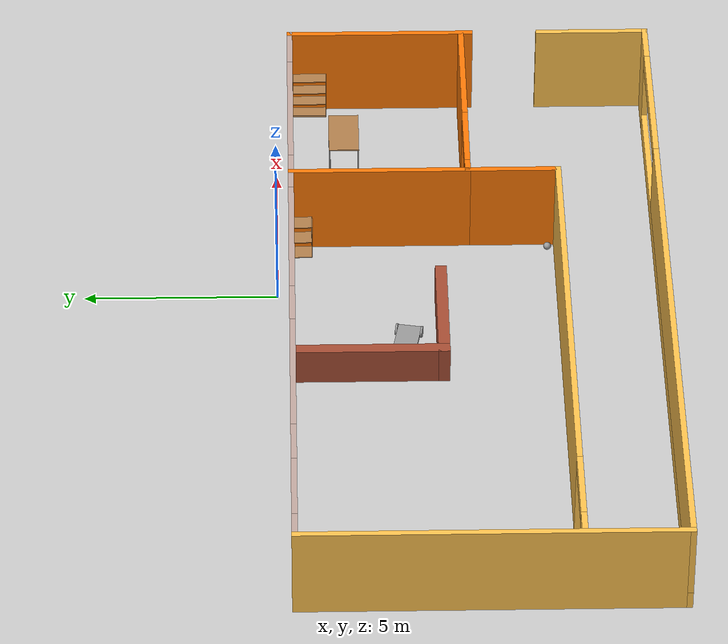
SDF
<sdf version="1.6">
 <world name="default">
  <model name="ground_plane">
   <static>1</static>
   <link name="link">
    <collision name="collision">
     <geometry><plane><normal>0 0 1</normal><size>100 100</size></plane></geometry>
     <surface>
      <contact><collide_bitmask>65535</collide_bitmask></contact>
      <friction><ode><mu>100</mu><mu2>50</mu2></ode></friction>
     </surface>
    </collision>
    <visual name="visual">
     <cast_shadows>0</cast_shadows>
     <geometry><plane><normal>0 0 1</normal><size>100 100</size></plane></geometry>
     <material>
      <script><uri>file://media/materials/scripts/gazebo.material</uri><name>Gazebo/Grey</name></script>
     </material>
    </visual>
   </link>
  </model>
  <model name="building_proj">
   <pose>-1.89195 -5.00108 0 0 -0 0</pose>
   <link name="Wall_20">
    <pose>-0 4.62544 0 0 -0 0</pose>
    <visual name="Wall_20_Visual_0">
     <pose>-9.60321 0 1.25 0 -0 0</pose>
     <geometry><box><size>0.793589 0.15 2.5</size></box></geometry>
     <material>
      <script><uri>file://media/materials/scripts/gazebo.material</uri><name>Gazebo/Grey</name></script>
      <ambient>0.760784 0.662745 0.627451 1</ambient>
     </material>
     <meta><layer>0</layer></meta>
    </visual>
    <collision name="Wall_20_Collision_0">
     <geometry><box><size>0.793589 0.15 2.5</size></box></geometry>
     <pose>-9.60321 0 1.25 0 -0 0</pose>
    </collision>
    <visual name="Wall_20_Visual_1">
     <pose>-6.57719 0 1.25 0 -0 0</pose>
     <geometry><box><size>1.25845 0.15 2.5</size></box></geometry>
     <material>
      <script><uri>file://media/materials/scripts/gazebo.material</uri><name>Gazebo/Grey</name></script>
      <ambient>0.760784 0.662745 0.627451 1</ambient>
     </material>
     <meta><layer>0</layer></meta>
    </visual>
    <collision name="Wall_20_Collision_1">
     <geometry><box><size>1.25845 0.15 2.5</size></box></geometry>
     <pose>-6.57719 0 1.25 0 -0 0</pose>
    </collision>
    <visual name="Wall_20_Visual_2">
     <pose>2.02602 0 0.25 0 -0 0</pose>
     <geometry><box><size>15.948 0.15 0.5</size></box></geometry>
     <material>
      <script><uri>file://media/materials/scripts/gazebo.material</uri><name>Gazebo/Grey</name></script>
      <ambient>0.760784 0.662745 0.627451 1</ambient>
     </material>
     <meta><layer>0</layer></meta>
    </visual>
    <collision name="Wall_20_Collision_2">
     <geometry><box><size>15.948 0.15 0.5</size></box></geometry>
     <pose>2.02602 0 0.25 0 -0 0</pose>
    </collision>
    <visual name="Wall_20_Visual_3">
     <pose>-1.30164 0 1.5 0 -0 0</pose>
     <geometry><box><size>1.29265 0.15 2</size></box></geometry>
     <material>
      <script><uri>file://media/materials/scripts/gazebo.material</uri><name>Gazebo/Grey</name></script>
      <ambient>0.760784 0.662745 0.627451 1</ambient>
     </material>
     <meta><layer>0</layer></meta>
    </visual>
    <collision name="Wall_20_Collision_3">
     <geometry><box><size>1.29265 0.15 2</size></box></geometry>
     <pose>-1.30164 0 1.5 0 -0 0</pose>
    </collision>
    <visual name="Wall_20_Visual_4">
     <pose>4.01382 0 1.5 0 -0 0</pose>
     <geometry><box><size>1.33827 0.15 2</size></box></geometry>
     <material>
      <script><uri>file://media/materials/scripts/gazebo.material</uri><name>Gazebo/Grey</name></script>
      <ambient>0.760784 0.662745 0.627451 1</ambient>
     </material>
     <meta><layer>0</layer></meta>
    </visual>
    <collision name="Wall_20_Collision_4">
     <geometry><box><size>1.33827 0.15 2</size></box></geometry>
     <pose>4.01382 0 1.5 0 -0 0</pose>
    </collision>
    <visual name="Wall_20_Visual_5">
     <pose>9.34148 0 1.5 0 -0 0</pose>
     <geometry><box><size>1.31705 0.15 2</size></box></geometry>
     <material>
      <script><uri>file://media/materials/scripts/gazebo.material</uri><name>Gazebo/Grey</name></script>
      <ambient>0.760784 0.662745 0.627451 1</ambient>
     </material>
     <meta><layer>0</layer></meta>
    </visual>
    <collision name="Wall_20_Collision_5">
     <geometry><box><size>1.31705 0.15 2</size></box></geometry>
     <pose>9.34148 0 1.5 0 -0 0</pose>
    </collision>
    <visual name="Wall_20_Visual_6">
     <pose>-8.20641 0 2.3 0 -0 0</pose>
     <geometry><box><size>2 0.15 0.4</size></box></geometry>
     <material>
      <script><uri>file://media/materials/scripts/gazebo.material</uri><name>Gazebo/Grey</name></script>
      <ambient>0.760784 0.662745 0.627451 1</ambient>
     </material>
     <meta><layer>0</layer></meta>
    </visual>
    <collision name="Wall_20_Collision_6">
     <geometry><box><size>2 0.15 0.4</size></box></geometry>
     <pose>-8.20641 0 2.3 0 -0 0</pose>
    </collision>
    <visual name="Wall_20_Visual_7">
     <pose>-3.94796 0 2.3 0 -0 0</pose>
     <geometry><box><size>4 0.15 0.4</size></box></geometry>
     <material>
      <script><uri>file://media/materials/scripts/gazebo.material</uri><name>Gazebo/Grey</name></script>
      <ambient>0.760784 0.662745 0.627451 1</ambient>
     </material>
     <meta><layer>0</layer></meta>
    </visual>
    <collision name="Wall_20_Collision_7">
     <geometry><box><size>4 0.15 0.4</size></box></geometry>
     <pose>-3.94796 0 2.3 0 -0 0</pose>
    </collision>
    <visual name="Wall_20_Visual_8">
     <pose>1.34468 0 2.3 0 -0 0</pose>
     <geometry><box><size>4 0.15 0.4</size></box></geometry>
     <material>
      <script><uri>file://media/materials/scripts/gazebo.material</uri><name>Gazebo/Grey</name></script>
      <ambient>0.760784 0.662745 0.627451 1</ambient>
     </material>
     <meta><layer>0</layer></meta>
    </visual>
    <collision name="Wall_20_Collision_8">
     <geometry><box><size>4 0.15 0.4</size></box></geometry>
     <pose>1.34468 0 2.3 0 -0 0</pose>
    </collision>
    <visual name="Wall_20_Visual_9">
     <pose>6.68295 0 2.3 0 -0 0</pose>
     <geometry><box><size>4 0.15 0.4</size></box></geometry>
     <material>
      <script><uri>file://media/materials/scripts/gazebo.material</uri><name>Gazebo/Grey</name></script>
      <ambient>0.760784 0.662745 0.627451 1</ambient>
     </material>
     <meta><layer>0</layer></meta>
    </visual>
    <collision name="Wall_20_Collision_9">
     <geometry><box><size>4 0.15 0.4</size></box></geometry>
     <pose>6.68295 0 2.3 0 -0 0</pose>
    </collision>
   </link>
   <link name="Wall_21">
    <collision name="Wall_21_Collision">
     <geometry><box><size>5 0.15 2.5</size></box></geometry>
     <pose>0 0 1.25 0 -0 0</pose>
    </collision>
    <visual name="Wall_21_Visual">
     <pose>0 0 1.25 0 -0 0</pose>
     <geometry><box><size>5 0.15 2.5</size></box></geometry>
     <material>
      <script><uri>file://media/materials/scripts/gazebo.material</uri><name>Gazebo/Grey</name></script>
      <ambient>0.996078 0.47451 0.0196078 1</ambient>
     </material>
     <meta><layer>0</layer></meta>
    </visual>
    <pose>9.925 2.20044 0 0 -0 -1.5708</pose>
   </link>
   <link name="Wall_23">
    <collision name="Wall_23_Collision">
     <geometry><box><size>3 0.15 2.5</size></box></geometry>
     <pose>0 0 1.25 0 -0 0</pose>
    </collision>
    <visual name="Wall_23_Visual">
     <pose>0 0 1.25 0 -0 0</pose>
     <geometry><box><size>3 0.15 2.5</size></box></geometry>
     <material>
      <script><uri>file://media/materials/scripts/gazebo.material</uri><name>Gazebo/Grey</name></script>
      <ambient>1 0.764706 0.305882 1</ambient>
     </material>
     <meta><layer>0</layer></meta>
    </visual>
    <pose>9.925 -3.49956 0 0 -0 -1.5708</pose>
   </link>
   <link name="Wall_24">
    <pose>-0 -4.92456 0 0 -0 3.14159</pose>
    <visual name="Wall_24_Visual_0">
     <pose>-9.39305 0 1.25 0 -0 0</pose>
     <geometry><box><size>1.21389 0.15 2.5</size></box></geometry>
     <material>
      <script><uri>file://media/materials/scripts/gazebo.material</uri><name>Gazebo/Grey</name></script>
      <ambient>1 0.764706 0.305882 1</ambient>
     </material>
     <meta><layer>0</layer></meta>
    </visual>
    <collision name="Wall_24_Collision_0">
     <geometry><box><size>1.21389 0.15 2.5</size></box></geometry>
     <pose>-9.39305 0 1.25 0 -0 0</pose>
    </collision>
    <visual name="Wall_24_Visual_1">
     <pose>0.606947 0 0.25 0 -0 0</pose>
     <geometry><box><size>18.7861 0.15 0.5</size></box></geometry>
     <material>
      <script><uri>file://media/materials/scripts/gazebo.material</uri><name>Gazebo/Grey</name></script>
      <ambient>1 0.764706 0.305882 1</ambient>
     </material>
     <meta><layer>0</layer></meta>
    </visual>
    <collision name="Wall_24_Collision_1">
     <geometry><box><size>18.7861 0.15 0.5</size></box></geometry>
     <pose>0.606947 0 0.25 0 -0 0</pose>
    </collision>
    <visual name="Wall_24_Visual_2">
     <pose>2.60695 0 1.5 0 -0 0</pose>
     <geometry><box><size>14.7861 0.15 2</size></box></geometry>
     <material>
      <script><uri>file://media/materials/scripts/gazebo.material</uri><name>Gazebo/Grey</name></script>
      <ambient>1 0.764706 0.305882 1</ambient>
     </material>
     <meta><layer>0</layer></meta>
    </visual>
    <collision name="Wall_24_Collision_2">
     <geometry><box><size>14.7861 0.15 2</size></box></geometry>
     <pose>2.60695 0 1.5 0 -0 0</pose>
    </collision>
    <visual name="Wall_24_Visual_3">
     <pose>-6.78611 0 2.3 0 -0 0</pose>
     <geometry><box><size>4 0.15 0.4</size></box></geometry>
     <material>
      <script><uri>file://media/materials/scripts/gazebo.material</uri><name>Gazebo/Grey</name></script>
      <ambient>1 0.764706 0.305882 1</ambient>
     </material>
     <meta><layer>0</layer></meta>
    </visual>
    <collision name="Wall_24_Collision_3">
     <geometry><box><size>4 0.15 0.4</size></box></geometry>
     <pose>-6.78611 0 2.3 0 -0 0</pose>
    </collision>
   </link>
   <link name="Wall_25">
    <collision name="Wall_25_Collision">
     <geometry><box><size>9.7 0.15 2.5</size></box></geometry>
     <pose>0 0 1.25 0 -0 0</pose>
    </collision>
    <visual name="Wall_25_Visual">
     <pose>0 0 1.25 0 -0 0</pose>
     <geometry><box><size>9.7 0.15 2.5</size></box></geometry>
     <material>
      <script><uri>file://media/materials/scripts/gazebo.material</uri><name>Gazebo/Grey</name></script>
      <ambient>1 0.764706 0.305882 1</ambient>
     </material>
     <meta><layer>0</layer></meta>
    </visual>
    <pose>-9.925 -0.149558 0 0 -0 1.5708</pose>
   </link>
   <link name="Wall_49">
    <collision name="Wall_49_Collision">
     <geometry><box><size>4.75 0.15 2.5</size></box></geometry>
     <pose>0 0 1.25 0 -0 0</pose>
    </collision>
    <visual name="Wall_49_Visual">
     <pose>0 0 1.25 0 -0 0</pose>
     <geometry><box><size>4.75 0.15 2.5</size></box></geometry>
     <material>
      <script><uri>file://media/materials/scripts/gazebo.material</uri><name>Gazebo/Grey</name></script>
      <ambient>0.996078 0.47451 0.0196078 1</ambient>
     </material>
     <meta><layer>0</layer></meta>
    </visual>
    <pose>4.01102 2.32197 0 0 -0 -1.5708</pose>
   </link>
   <link name="Wall_50">
    <pose>6.93602 0.021971 0 0 -0 0</pose>
    <visual name="Wall_50_Visual_0">
     <pose>-2.75702 0 1.25 0 -0 0</pose>
     <geometry><box><size>0.485967 0.15 2.5</size></box></geometry>
     <material>
      <script><uri>file://media/materials/scripts/gazebo.material</uri><name>Gazebo/Grey</name></script>
      <ambient>0.996078 0.47451 0.0196078 1</ambient>
     </material>
     <meta><layer>0</layer></meta>
    </visual>
    <collision name="Wall_50_Collision_0">
     <geometry><box><size>0.485967 0.15 2.5</size></box></geometry>
     <pose>-2.75702 0 1.25 0 -0 0</pose>
    </collision>
    <visual name="Wall_50_Visual_1">
     <pose>1.24298 0 1.25 0 -0 0</pose>
     <geometry><box><size>3.51403 0.15 2.5</size></box></geometry>
     <material>
      <script><uri>file://media/materials/scripts/gazebo.material</uri><name>Gazebo/Grey</name></script>
      <ambient>0.996078 0.47451 0.0196078 1</ambient>
     </material>
     <meta><layer>0</layer></meta>
    </visual>
    <collision name="Wall_50_Collision_1">
     <geometry><box><size>3.51403 0.15 2.5</size></box></geometry>
     <pose>1.24298 0 1.25 0 -0 0</pose>
    </collision>
    <visual name="Wall_50_Visual_2">
     <pose>-1.51403 0 2.3 0 -0 0</pose>
     <geometry><box><size>2 0.15 0.4</size></box></geometry>
     <material>
      <script><uri>file://media/materials/scripts/gazebo.material</uri><name>Gazebo/Grey</name></script>
      <ambient>0.996078 0.47451 0.0196078 1</ambient>
     </material>
     <meta><layer>0</layer></meta>
    </visual>
    <collision name="Wall_50_Collision_2">
     <geometry><box><size>2 0.15 0.4</size></box></geometry>
     <pose>-1.51403 0 2.3 0 -0 0</pose>
    </collision>
   </link>
   <link name="Wall_52">
    <collision name="Wall_52_Collision">
     <geometry><box><size>2.5 0.15 2.5</size></box></geometry>
     <pose>0 0 1.25 0 -0 0</pose>
    </collision>
    <visual name="Wall_52_Visual">
     <pose>0 0 1.25 0 -0 0</pose>
     <geometry><box><size>2.5 0.15 2.5</size></box></geometry>
     <material>
      <script><uri>file://media/materials/scripts/gazebo.material</uri><name>Gazebo/Grey</name></script>
      <ambient>0.996078 0.47451 0.0196078 1</ambient>
     </material>
     <meta><layer>0</layer></meta>
    </visual>
    <pose>4.01102 -1.15303 0 0 -0 -1.5708</pose>
   </link>
   <link name="Wall_53">
    <pose>-2.91398 -2.32803 0 0 -0 3.14159</pose>
    <visual name="Wall_53_Visual_0">
     <pose>-1.33289 0 1.25 0 -0 0</pose>
     <geometry><box><size>11.3342 0.15 2.5</size></box></geometry>
     <material>
      <script><uri>file://media/materials/scripts/gazebo.material</uri><name>Gazebo/Grey</name></script>
      <ambient>1 0.764706 0.305882 1</ambient>
     </material>
     <meta><layer>0</layer></meta>
    </visual>
    <collision name="Wall_53_Collision_0">
     <geometry><box><size>11.3342 0.15 2.5</size></box></geometry>
     <pose>-1.33289 0 1.25 0 -0 0</pose>
    </collision>
    <visual name="Wall_53_Visual_1">
     <pose>6.66711 0 1.25 0 -0 0</pose>
     <geometry><box><size>0.665778 0.15 2.5</size></box></geometry>
     <material>
      <script><uri>file://media/materials/scripts/gazebo.material</uri><name>Gazebo/Grey</name></script>
      <ambient>1 0.764706 0.305882 1</ambient>
     </material>
     <meta><layer>0</layer></meta>
    </visual>
    <collision name="Wall_53_Collision_1">
     <geometry><box><size>0.665778 0.15 2.5</size></box></geometry>
     <pose>6.66711 0 1.25 0 -0 0</pose>
    </collision>
    <visual name="Wall_53_Visual_2">
     <pose>5.33422 0 2.3 0 -0 0</pose>
     <geometry><box><size>2 0.15 0.4</size></box></geometry>
     <material>
      <script><uri>file://media/materials/scripts/gazebo.material</uri><name>Gazebo/Grey</name></script>
      <ambient>1 0.764706 0.305882 1</ambient>
     </material>
     <meta><layer>0</layer></meta>
    </visual>
    <collision name="Wall_53_Collision_2">
     <geometry><box><size>2 0.15 0.4</size></box></geometry>
     <pose>5.33422 0 2.3 0 -0 0</pose>
    </collision>
   </link>
   <link name="Wall_55">
    <collision name="Wall_55_Collision">
     <geometry><box><size>4 0.3 1</size></box></geometry>
     <pose>0 0 0.5 0 -0 0</pose>
    </collision>
    <visual name="Wall_55_Visual">
     <pose>0 0 0.5 0 -0 0</pose>
     <geometry><box><size>4 0.3 1</size></box></geometry>
     <material>
      <script><uri>file://media/materials/scripts/gazebo.material</uri><name>Gazebo/Bricks</name></script>
      <ambient>1 1 1 1</ambient>
     </material>
     <meta><layer>0</layer></meta>
    </visual>
    <pose>-1.35578 2.62156 0 0 -0 -1.5708</pose>
   </link>
   <link name="Wall_56">
    <collision name="Wall_56_Collision">
     <geometry><box><size>3.40049 0.3 1</size></box></geometry>
     <pose>0 0 0.5 0 -0 0</pose>
    </collision>
    <visual name="Wall_56_Visual">
     <pose>0 0 0.5 0 -0 0</pose>
     <geometry><box><size>3.40049 0.3 1</size></box></geometry>
     <material>
      <script><uri>file://media/materials/scripts/gazebo.material</uri><name>Gazebo/Bricks</name></script>
      <ambient>1 1 1 1</ambient>
     </material>
     <meta><layer>0</layer></meta>
    </visual>
    <pose>0.194224 0.771557 0 0 -0 0</pose>
   </link>
   <static>1</static>
  </model>
  <model name="robot_tricycle_0">
   <link name="link_0">
    <inertial>
     <mass>1</mass>
     <inertia>
      <ixx>0.166667</ixx>
      <ixy>0</ixy>
      <ixz>0</ixz>
      <iyy>0.166667</iyy>
      <iyz>0</iyz>
      <izz>0.166667</izz>
     </inertia>
    </inertial>
    <pose>-0.0625 0.0125 0.025 0 -0 0</pose>
    <visual name="visual">
     <geometry><box><size>1 0.6 0.1</size></box></geometry>
     <material>
      <lighting>1</lighting>
      <script><uri>file://media/materials/scripts/gazebo.material</uri><name>Gazebo/Grey</name></script>
      <shader type="pixel"><normal_map>__default__</normal_map></shader>
      <ambient>0.3 0.3 0.3 1</ambient>
      <diffuse>0.7 0.7 0.7 1</diffuse>
      <specular>0.01 0.01 0.01 1</specular>
      <emissive>0 0 0 1</emissive>
     </material>
    </visual>
    <collision name="collision">
     <geometry><box><size>1 0.6 0.1</size></box></geometry>
     <surface>
      <friction>
       <ode><mu>1</mu><mu2>1</mu2><fdir1>0 0 0</fdir1><slip1>0</slip1><slip2>0</slip2></ode>
       <torsional>
        <coefficient>1</coefficient>
        <patch_radius>0</patch_radius>
        <surface_radius>0</surface_radius>
        <use_patch_radius>1</use_patch_radius>
        <ode><slip>0</slip></ode>
       </torsional>
      </friction>
      <bounce><restitution_coefficient>0</restitution_coefficient><threshold>1e+06</threshold></bounce>
      <contact>
       <collide_without_contact>0</collide_without_contact>
       <collide_without_contact_bitmask>1</collide_without_contact_bitmask>
       <collide_bitmask>1</collide_bitmask>
       <ode>
        <soft_cfm>0</soft_cfm>
        <soft_erp>0.2</soft_erp>
        <kp>1e+13</kp>
        <kd>1</kd>
        <max_vel>0.01</max_vel>
        <min_depth>0</min_depth>
       </ode>
       <bullet>
        <split_impulse>1</split_impulse>
        <split_impulse_penetration_threshold>-0.01</split_impulse_penetration_threshold>
        <soft_cfm>0</soft_cfm>
        <soft_erp>0.2</soft_erp>
        <kp>1e+13</kp>
        <kd>1</kd>
       </bullet>
      </contact>
     </surface>
    </collision>
   </link>
   <link name="link_1">
    <inertial>
     <mass>1</mass>
     <inertia><ixx>0.1</ixx><ixy>0</ixy><ixz>0</ixz><iyy>0.1</iyy><iyz>0</iyz><izz>0.1</izz></inertia>
    </inertial>
    <pose>-0.5125 0.0125 -0.075 0 -0 0</pose>
    <visual name="visual">
     <geometry><sphere><radius>0.05</radius></sphere></geometry>
     <material>
      <lighting>1</lighting>
      <script><uri>file://media/materials/scripts/gazebo.material</uri><name>Gazebo/Grey</name></script>
      <shader type="pixel"><normal_map>__default__</normal_map></shader>
      <ambient>0.3 0.3 0.3 1</ambient>
      <diffuse>0.7 0.7 0.7 1</diffuse>
      <specular>0.01 0.01 0.01 1</specular>
      <emissive>0 0 0 1</emissive>
     </material>
    </visual>
    <collision name="collision">
     <geometry><sphere><radius>0.05</radius></sphere></geometry>
     <surface>
      <friction>
       <ode><mu>1</mu><mu2>1</mu2><fdir1>0 0 0</fdir1><slip1>0</slip1><slip2>0</slip2></ode>
       <torsional>
        <coefficient>1</coefficient>
        <patch_radius>0</patch_radius>
        <surface_radius>0</surface_radius>
        <use_patch_radius>1</use_patch_radius>
        <ode><slip>0</slip></ode>
       </torsional>
      </friction>
      <bounce><restitution_coefficient>0</restitution_coefficient><threshold>1e+06</threshold></bounce>
      <contact>
       <collide_without_contact>0</collide_without_contact>
       <collide_without_contact_bitmask>1</collide_without_contact_bitmask>
       <collide_bitmask>1</collide_bitmask>
       <ode>
        <soft_cfm>0</soft_cfm>
        <soft_erp>0.2</soft_erp>
        <kp>1e+13</kp>
        <kd>1</kd>
        <max_vel>0.01</max_vel>
        <min_depth>0</min_depth>
       </ode>
       <bullet>
        <split_impulse>1</split_impulse>
        <split_impulse_penetration_threshold>-0.01</split_impulse_penetration_threshold>
        <soft_cfm>0</soft_cfm>
        <soft_erp>0.2</soft_erp>
        <kp>1e+13</kp>
        <kd>1</kd>
       </bullet>
      </contact>
     </surface>
    </collision>
   </link>
   <link name="link_2">
    <inertial>
     <mass>1</mass>
     <inertia><ixx>0.145833</ixx><ixy>0</ixy><ixz>0</ixz><iyy>0.145833</iyy><iyz>0</iyz><izz>0.125</izz></inertia>
    </inertial>
    <pose>0.2875 0.3375 0.025 1.5708 -0 0</pose>
    <visual name="visual">
     <geometry><cylinder><radius>0.15</radius><length>0.05</length></cylinder></geometry>
     <material>
      <lighting>1</lighting>
      <script><uri>file://media/materials/scripts/gazebo.material</uri><name>Gazebo/Grey</name></script>
      <shader type="pixel"><normal_map>__default__</normal_map></shader>
      <ambient>0.3 0.3 0.3 1</ambient>
      <diffuse>0.7 0.7 0.7 1</diffuse>
      <specular>0.01 0.01 0.01 1</specular>
      <emissive>0 0 0 1</emissive>
     </material>
    </visual>
    <collision name="collision">
     <geometry><cylinder><radius>0.15</radius><length>0.05</length></cylinder></geometry>
     <surface>
      <friction>
       <ode><mu>1</mu><mu2>1</mu2><fdir1>0 0 0</fdir1><slip1>0</slip1><slip2>0</slip2></ode>
       <torsional>
        <coefficient>1</coefficient>
        <patch_radius>0</patch_radius>
        <surface_radius>0</surface_radius>
        <use_patch_radius>1</use_patch_radius>
        <ode><slip>0</slip></ode>
       </torsional>
      </friction>
      <bounce><restitution_coefficient>0</restitution_coefficient><threshold>1e+06</threshold></bounce>
      <contact>
       <collide_without_contact>0</collide_without_contact>
       <collide_without_contact_bitmask>1</collide_without_contact_bitmask>
       <collide_bitmask>1</collide_bitmask>
       <ode>
        <soft_cfm>0</soft_cfm>
        <soft_erp>0.2</soft_erp>
        <kp>1e+13</kp>
        <kd>1</kd>
        <max_vel>0.01</max_vel>
        <min_depth>0</min_depth>
       </ode>
       <bullet>
        <split_impulse>1</split_impulse>
        <split_impulse_penetration_threshold>-0.01</split_impulse_penetration_threshold>
        <soft_cfm>0</soft_cfm>
        <soft_erp>0.2</soft_erp>
        <kp>1e+13</kp>
        <kd>1</kd>
       </bullet>
      </contact>
     </surface>
    </collision>
   </link>
   <link name="link_2_clone">
    <inertial>
     <mass>1</mass>
     <inertia><ixx>0.145833</ixx><ixy>0</ixy><ixz>0</ixz><iyy>0.145833</iyy><iyz>0</iyz><izz>0.125</izz></inertia>
    </inertial>
    <pose>0.2875 -0.3125 0.025 1.5708 -0 0</pose>
    <visual name="visual">
     <geometry><cylinder><radius>0.15</radius><length>0.05</length></cylinder></geometry>
     <material>
      <lighting>1</lighting>
      <script><uri>file://media/materials/scripts/gazebo.material</uri><name>Gazebo/Grey</name></script>
      <shader type="pixel"><normal_map>__default__</normal_map></shader>
      <ambient>0.3 0.3 0.3 1</ambient>
      <diffuse>0.7 0.7 0.7 1</diffuse>
      <specular>0.01 0.01 0.01 1</specular>
      <emissive>0 0 0 1</emissive>
     </material>
    </visual>
    <collision name="collision">
     <geometry><cylinder><radius>0.15</radius><length>0.05</length></cylinder></geometry>
     <surface>
      <friction>
       <ode><mu>1</mu><mu2>1</mu2><fdir1>0 0 0</fdir1><slip1>0</slip1><slip2>0</slip2></ode>
       <torsional>
        <coefficient>1</coefficient>
        <patch_radius>0</patch_radius>
        <surface_radius>0</surface_radius>
        <use_patch_radius>1</use_patch_radius>
        <ode><slip>0</slip></ode>
       </torsional>
      </friction>
      <bounce><restitution_coefficient>0</restitution_coefficient><threshold>1e+06</threshold></bounce>
      <contact>
       <collide_without_contact>0</collide_without_contact>
       <collide_without_contact_bitmask>1</collide_without_contact_bitmask>
       <collide_bitmask>1</collide_bitmask>
       <ode>
        <soft_cfm>0</soft_cfm>
        <soft_erp>0.2</soft_erp>
        <kp>1e+13</kp>
        <kd>1</kd>
        <max_vel>0.01</max_vel>
        <min_depth>0</min_depth>
       </ode>
       <bullet>
        <split_impulse>1</split_impulse>
        <split_impulse_penetration_threshold>-0.01</split_impulse_penetration_threshold>
        <soft_cfm>0</soft_cfm>
        <soft_erp>0.2</soft_erp>
        <kp>1e+13</kp>
        <kd>1</kd>
       </bullet>
      </contact>
     </surface>
    </collision>
   </link>
   <joint name="link_0_JOINT_1" type="ball">
    <parent>link_0</parent>
    <child>link_1</child>
    <physics>
     <ode><limit><cfm>0</cfm><erp>0.2</erp></limit><suspension><cfm>0</cfm><erp>0.2</erp></suspension></ode>
    </physics>
   </joint>
   <joint name="link_0_JOINT_2" type="revolute">
    <parent>link_0</parent>
    <child>link_2_clone</child>
    <axis>
     <xyz>0 0 1</xyz>
     <limit>
      <lower>-1.79769e+308</lower>
      <upper>1.79769e+308</upper>
      <effort>-1</effort>
      <velocity>-1</velocity>
     </limit>
     <dynamics>
      <spring_reference>0</spring_reference>
      <spring_stiffness>0</spring_stiffness>
      <damping>0</damping>
     </dynamics>
     <use_parent_model_frame>0</use_parent_model_frame>
    </axis>
    <physics>
     <ode><limit><cfm>0</cfm><erp>0.2</erp></limit><suspension><cfm>0</cfm><erp>0.2</erp></suspension></ode>
    </physics>
   </joint>
   <joint name="link_0_JOINT_5" type="revolute">
    <parent>link_0</parent>
    <child>link_2</child>
    <axis>
     <xyz>0 0 1</xyz>
     <limit>
      <lower>-1.79769e+308</lower>
      <upper>1.79769e+308</upper>
      <effort>-1</effort>
      <velocity>-1</velocity>
     </limit>
     <dynamics>
      <spring_reference>0</spring_reference>
      <spring_stiffness>0</spring_stiffness>
      <damping>0</damping>
     </dynamics>
     <use_parent_model_frame>0</use_parent_model_frame>
    </axis>
    <physics>
     <ode><limit><cfm>0</cfm><erp>0.2</erp></limit><suspension><cfm>0</cfm><erp>0.2</erp></suspension></ode>
    </physics>
   </joint>
   <static>0</static>
   <pose>-1.86069 -3.3388 0.124996 -1e-06 8e-06 -0.183238</pose>
  </model>
  <model name="bookshelf">
   <static>1</static>
   <link name="link">
    <inertial><mass>1</mass></inertial>
    <collision name="back">
     <pose>0 0.005 0.6 0 -0 0</pose>
     <geometry><box><size>0.9 0.01 1.2</size></box></geometry>
    </collision>
    <visual name="visual1">
     <pose>0 0.005 0.6 0 -0 0</pose>
     <geometry><box><size>0.9 0.01 1.2</size></box></geometry>
     <material>
      <script><uri>file://media/materials/scripts/gazebo.material</uri><name>Gazebo/Wood</name></script>
     </material>
    </visual>
    <collision name="left_side">
     <pose>0.45 -0.195 0.6 0 -0 0</pose>
     <geometry><box><size>0.02 0.4 1.2</size></box></geometry>
    </collision>
    <visual name="visual2">
     <pose>0.45 -0.195 0.6 0 -0 0</pose>
     <geometry><box><size>0.02 0.4 1.2</size></box></geometry>
     <material>
      <script><uri>file://media/materials/scripts/gazebo.material</uri><name>Gazebo/Wood</name></script>
     </material>
    </visual>
    <collision name="right_side">
     <pose>-0.45 -0.195 0.6 0 -0 0</pose>
     <geometry><box><size>0.02 0.4 1.2</size></box></geometry>
    </collision>
    <visual name="visual3">
     <pose>-0.45 -0.195 0.6 0 -0 0</pose>
     <geometry><box><size>0.02 0.4 1.2</size></box></geometry>
     <material>
      <script><uri>file://media/materials/scripts/gazebo.material</uri><name>Gazebo/Wood</name></script>
     </material>
    </visual>
    <collision name="bottom">
     <pose>0 -0.195 0.03 0 -0 0</pose>
     <geometry><box><size>0.88 0.4 0.06</size></box></geometry>
    </collision>
    <visual name="visual4">
     <pose>0 -0.195 0.03 0 -0 0</pose>
     <geometry><box><size>0.88 0.4 0.06</size></box></geometry>
     <material>
      <script><uri>file://media/materials/scripts/gazebo.material</uri><name>Gazebo/Wood</name></script>
     </material>
    </visual>
    <collision name="top">
     <pose>0 -0.195 1.19 0 -0 0</pose>
     <geometry><box><size>0.88 0.4 0.02</size></box></geometry>
    </collision>
    <visual name="visual5">
     <pose>0 -0.195 1.19 0 -0 0</pose>
     <geometry><box><size>0.88 0.4 0.02</size></box></geometry>
     <material>
      <script><uri>file://media/materials/scripts/gazebo.material</uri><name>Gazebo/Wood</name></script>
     </material>
    </visual>
    <collision name="low_shelf">
     <pose>0 -0.195 0.43 0 -0 0</pose>
     <geometry><box><size>0.88 0.4 0.02</size></box></geometry>
    </collision>
    <visual name="visual6">
     <pose>0 -0.195 0.43 0 -0 0</pose>
     <geometry><box><size>0.88 0.4 0.02</size></box></geometry>
     <material>
      <script><uri>file://media/materials/scripts/gazebo.material</uri><name>Gazebo/Wood</name></script>
     </material>
    </visual>
    <collision name="high_shelf">
     <pose>0 -0.195 0.8 0 -0 0</pose>
     <geometry><box><size>0.88 0.4 0.02</size></box></geometry>
    </collision>
    <visual name="visual7">
     <pose>0 -0.195 0.8 0 -0 0</pose>
     <geometry><box><size>0.88 0.4 0.02</size></box></geometry>
     <material>
      <script><uri>file://media/materials/scripts/gazebo.material</uri><name>Gazebo/Wood</name></script>
     </material>
    </visual>
   </link>
   <pose>7.99216 -0.897394 0 0 0 -1.5708</pose>
  </model>
  <model name="cabinet">
   <static>1</static>
   <link name="cabinet_bottom_plate">
    <inertial>
     <pose>0 0 -1 0 -0 0</pose>
     <inertia><ixx>2.05</ixx><ixy>0</ixy><ixz>0</ixz><iyy>2.05</iyy><iyz>0</iyz><izz>2.05</izz></inertia>
     <mass>25</mass>
    </inertial>
    <collision name="cabinet_bottom_plate_geom">
     <pose>0 0 0.01 0 -0 0</pose>
     <geometry><box><size>0.45 0.45 0.02</size></box></geometry>
    </collision>
    <visual name="cabinet_bottom_plate_geom_visual">
     <pose>0 0 0.01 0 -0 0</pose>
     <geometry><box><size>0.45 0.45 0.02</size></box></geometry>
     <material>
      <script><uri>file://media/materials/scripts/gazebo.material</uri><name>Gazebo/Wood</name></script>
     </material>
    </visual>
    <collision name="cabinet_bottom_plate_geom_cabinet_back_plate">
     <pose>0.235 0 0.51 0 -0 0</pose>
     <geometry><box><size>0.02 0.45 1.02</size></box></geometry>
    </collision>
    <visual name="cabinet_bottom_plate_geom_cabinet_back_plate_visual">
     <pose>0.235 0 0.51 0 -0 0</pose>
     <geometry><box><size>0.02 0.45 1.02</size></box></geometry>
     <material>
      <script><uri>file://media/materials/scripts/gazebo.material</uri><name>Gazebo/Wood</name></script>
     </material>
    </visual>
    <collision name="cabinet_bottom_plate_geom_cabinet_left_plate">
     <pose>0 0.235 0.51 0 -0 0</pose>
     <geometry><box><size>0.45 0.02 1.02</size></box></geometry>
    </collision>
    <visual name="cabinet_bottom_plate_geom_cabinet_left_plate_visual">
     <pose>0 0.235 0.51 0 -0 0</pose>
     <geometry><box><size>0.45 0.02 1.02</size></box></geometry>
     <material>
      <script><uri>file://media/materials/scripts/gazebo.material</uri><name>Gazebo/Wood</name></script>
     </material>
    </visual>
    <collision name="cabinet_bottom_plate_geom_cabinet_middle_plate">
     <pose>0 0 0.51 0 -0 0</pose>
     <geometry><box><size>0.45 0.45 0.02</size></box></geometry>
    </collision>
    <visual name="cabinet_bottom_plate_geom_cabinet_middle_plate_visual">
     <pose>0 0 0.51 0 -0 0</pose>
     <geometry><box><size>0.45 0.45 0.02</size></box></geometry>
     <material>
      <script><uri>file://media/materials/scripts/gazebo.material</uri><name>Gazebo/Wood</name></script>
     </material>
    </visual>
    <collision name="cabinet_bottom_plate_geom_cabinet_right_plate">
     <pose>0 -0.235 0.51 0 -0 0</pose>
     <geometry><box><size>0.45 0.02 1.02</size></box></geometry>
    </collision>
    <visual name="cabinet_bottom_plate_geom_cabinet_right_plate_visual">
     <pose>0 -0.235 0.51 0 -0 0</pose>
     <geometry><box><size>0.45 0.02 1.02</size></box></geometry>
     <material>
      <script><uri>file://media/materials/scripts/gazebo.material</uri><name>Gazebo/Wood</name></script>
     </material>
    </visual>
    <collision name="cabinet_bottom_plate_geom_cabinet_top_plate">
     <pose>0 0 1.01 0 -0 0</pose>
     <geometry><box><size>0.45 0.45 0.02</size></box></geometry>
    </collision>
    <visual name="cabinet_bottom_plate_geom_cabinet_top_plate_visual">
     <pose>0 0 1.01 0 -0 0</pose>
     <geometry><box><size>0.45 0.45 0.02</size></box></geometry>
     <material>
      <script><uri>file://media/materials/scripts/gazebo.material</uri><name>Gazebo/Wood</name></script>
     </material>
    </visual>
   </link>
   <pose>1.81919 -0.676908 0 0 -0 0</pose>
  </model>
  <model name="table">
   <static>1</static>
   <link name="link">
    <collision name="surface">
     <pose>0 0 1 0 -0 0</pose>
     <geometry><box><size>1.5 0.8 0.03</size></box></geometry>
     <surface><friction><ode><mu>0.6</mu><mu2>0.6</mu2></ode></friction></surface>
    </collision>
    <visual name="visual1">
     <pose>0 0 1 0 -0 0</pose>
     <geometry><box><size>1.5 0.8 0.03</size></box></geometry>
     <material>
      <script><uri>file://media/materials/scripts/gazebo.material</uri><name>Gazebo/Wood</name></script>
     </material>
    </visual>
    <collision name="front_left_leg">
     <pose>0.68 0.38 0.5 0 -0 0</pose>
     <geometry><cylinder><radius>0.02</radius><length>1</length></cylinder></geometry>
    </collision>
    <visual name="front_left_leg">
     <pose>0.68 0.38 0.5 0 -0 0</pose>
     <geometry><cylinder><radius>0.02</radius><length>1</length></cylinder></geometry>
     <material>
      <script><uri>file://media/materials/scripts/gazebo.material</uri><name>Gazebo/Grey</name></script>
     </material>
    </visual>
    <collision name="front_right_leg">
     <pose>0.68 -0.38 0.5 0 -0 0</pose>
     <geometry><cylinder><radius>0.02</radius><length>1</length></cylinder></geometry>
    </collision>
    <visual name="front_right_leg">
     <pose>0.68 -0.38 0.5 0 -0 0</pose>
     <geometry><cylinder><radius>0.02</radius><length>1</length></cylinder></geometry>
     <material>
      <script><uri>file://media/materials/scripts/gazebo.material</uri><name>Gazebo/Grey</name></script>
     </material>
    </visual>
    <collision name="back_right_leg">
     <pose>-0.68 -0.38 0.5 0 -0 0</pose>
     <geometry><cylinder><radius>0.02</radius><length>1</length></cylinder></geometry>
    </collision>
    <visual name="back_right_leg">
     <pose>-0.68 -0.38 0.5 0 -0 0</pose>
     <geometry><cylinder><radius>0.02</radius><length>1</length></cylinder></geometry>
     <material>
      <script><uri>file://media/materials/scripts/gazebo.material</uri><name>Gazebo/Grey</name></script>
     </material>
    </visual>
    <collision name="back_left_leg">
     <pose>-0.68 0.38 0.5 0 -0 0</pose>
     <geometry><cylinder><radius>0.02</radius><length>1</length></cylinder></geometry>
    </collision>
    <visual name="back_left_leg">
     <pose>-0.68 0.38 0.5 0 -0 0</pose>
     <geometry><cylinder><radius>0.02</radius><length>1</length></cylinder></geometry>
     <material>
      <script><uri>file://media/materials/scripts/gazebo.material</uri><name>Gazebo/Grey</name></script>
     </material>
    </visual>
   </link>
   <pose>5.6105 -1.79564 0 0 -0 0</pose>
  </model>
  <model name="my_ball">
   <link name="link">
    <inertial>
     <mass>1</mass>
     <inertia><ixx>0.1</ixx><ixy>0</ixy><ixz>0</ixz><iyy>0.1</iyy><iyz>0</iyz><izz>0.1</izz></inertia>
    </inertial>
    <visual name="visual">
     <geometry><sphere><radius>0.1</radius></sphere></geometry>
     <material>
      <script><name>Gazebo/Grey</name><uri>file://media/materials/scripts/gazebo.material</uri></script>
      <shader type="pixel"><normal_map>__default__</normal_map></shader>
      <ambient>1 1 1 1</ambient>
      <diffuse>1 1 1 1</diffuse>
      <specular>1 1 1 1</specular>
      <emissive>1 1 1 1</emissive>
     </material>
    </visual>
    <collision name="collision">
     <geometry><sphere><radius>0.1</radius></sphere></geometry>
     <surface>
      <friction>
       <ode><mu>1</mu><mu2>1</mu2><fdir1>0 0 0</fdir1><slip1>0</slip1><slip2>0</slip2></ode>
       <torsional>
        <coefficient>1</coefficient>
        <patch_radius>0</patch_radius>
        <surface_radius>0</surface_radius>
        <use_patch_radius>1</use_patch_radius>
        <ode><slip>0</slip></ode>
       </torsional>
      </friction>
      <bounce><restitution_coefficient>0</restitution_coefficient><threshold>1e+06</threshold></bounce>
      <contact>
       <collide_without_contact>0</collide_without_contact>
       <collide_without_contact_bitmask>1</collide_without_contact_bitmask>
       <collide_bitmask>1</collide_bitmask>
       <ode>
        <soft_cfm>0</soft_cfm>
        <soft_erp>0.2</soft_erp>
        <kp>1e+13</kp>
        <kd>1</kd>
        <max_vel>0.01</max_vel>
        <min_depth>0</min_depth>
       </ode>
       <bullet>
        <split_impulse>1</split_impulse>
        <split_impulse_penetration_threshold>-0.01</split_impulse_penetration_threshold>
        <soft_cfm>0</soft_cfm>
        <soft_erp>0.2</soft_erp>
        <kp>1e+13</kp>
        <kd>1</kd>
       </bullet>
      </contact>
     </surface>
    </collision>
   </link>
   <static>0</static>
   <pose>1.86291 -7.09042 0.1 0 -0 0</pose>
  </model>
 </world>
</sdf>
